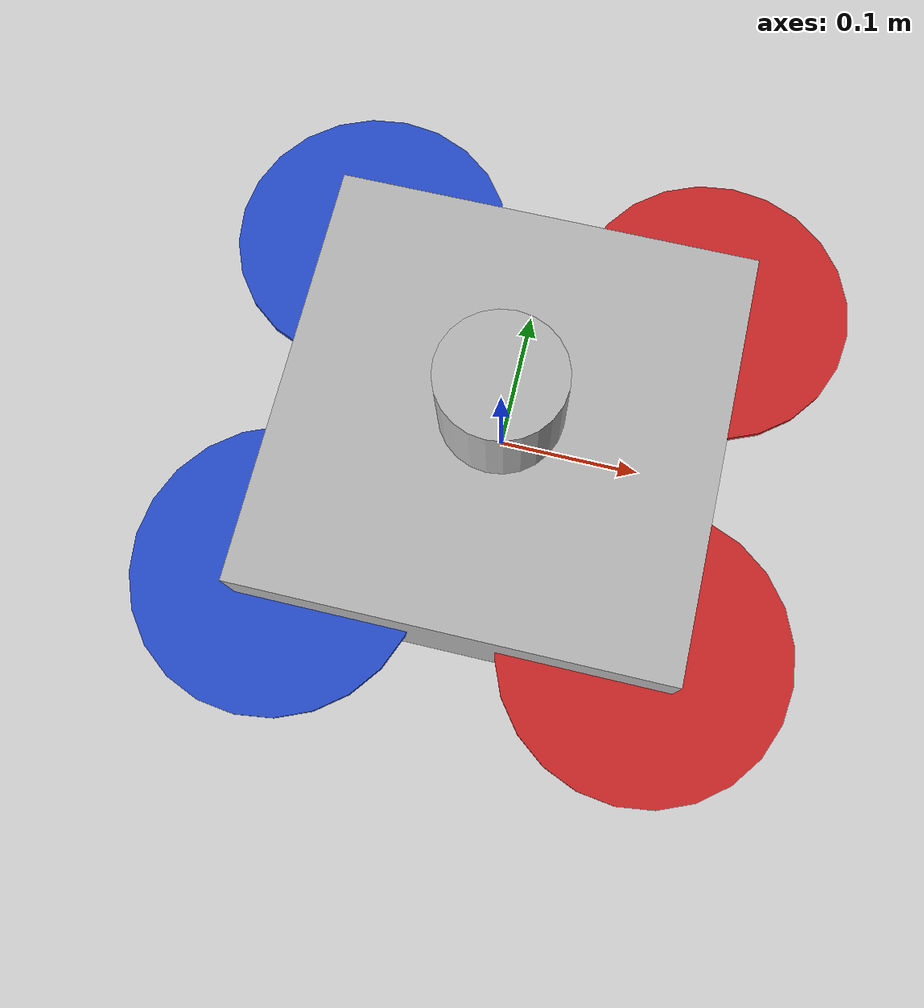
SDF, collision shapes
<?xml version="1.0"?>

<sdf version='1.7'>
  <model name='ardrone'>
  <static>false</static>

    <link name='ardrone/base_link'>
      <pose>0 0 0 0 0 0</pose>
      <inertial>
        <pose>0 0 0 0 0 0</pose>
        <mass>1.5</mass>
        <inertia>
          <ixx>0.0347563</ixx>
          <ixy>0</ixy>
          <ixz>0</ixz>
          <iyy>0.0458929</iyy>
          <iyz>0</iyz>
          <izz>0.0977</izz>
        </inertia>
      </inertial>
      <collision name='base_link_inertia_collision'>
        <pose>0 0 0.014 0 0 0</pose>
        <geometry>
            <box>
              <size>0.3 0.3 0.11</size>
            </box>
        </geometry>
      </collision>
      <visual name='base_link_inertia_visual'>
        <pose>0 0 0 0 0 0</pose>
        <geometry>
          <mesh>
            <scale>1 1 1</scale>
            <uri>model://ardrone/meshes/ardrone/quadrotor_4.dae</uri>
          </mesh>
        </geometry>
      </visual>
    </link>
    <link name='ardrone/imu_link'>
      <pose>0 0 0 0 0 0</pose>
    </link>
    <joint name='ardrone/imu_joint' type='revolute'>
      <child>ardrone/imu_link</child>
      <parent>ardrone/base_link</parent>
      <axis>
        <xyz>1 0 0</xyz>
        <limit>
          <lower>0</lower>
          <upper>0</upper>
          <effort>0</effort>
          <velocity>0</velocity>
        </limit>
        <dynamics>
          <spring_reference>0</spring_reference>
          <spring_stiffness>0</spring_stiffness>
        </dynamics>
        <use_parent_model_frame>1</use_parent_model_frame>
      </axis>
    </joint>
    <link name='ardrone/imugt_link'>
      <pose>0 0 0 0 0 0</pose>
      <inertial>
        <pose>0 0 0 0 0 0</pose>
        <mass>1e-05</mass>
        <inertia>
          <ixx>1e-05</ixx>
          <ixy>0</ixy>
          <ixz>0</ixz>
          <iyy>1e-05</iyy>
          <iyz>0</iyz>
          <izz>1e-05</izz>
        </inertia>
      </inertial>
    </link>
    <joint name='ardrone/imugt_joint' type='revolute'>
      <child>ardrone/imugt_link</child>
      <parent>ardrone/base_link</parent>
      <axis>
        <xyz>1 0 0</xyz>
        <limit>
          <lower>0</lower>
          <upper>0</upper>
          <effort>0</effort>
          <velocity>0</velocity>
        </limit>
        <dynamics>
          <spring_reference>0</spring_reference>
          <spring_stiffness>0</spring_stiffness>
        </dynamics>
        <use_parent_model_frame>1</use_parent_model_frame>
      </axis>
    </joint>
    <link name='ardrone/odometry_sensor1_link'>
      <pose>0 0 0 0 0 0</pose>
      <inertial>
        <pose>0 0 0 0 0 0</pose>
        <mass>1e-05</mass>
        <inertia>
          <ixx>1e-05</ixx>
          <ixy>0</ixy>
          <ixz>0</ixz>
          <iyy>1e-05</iyy>
          <iyz>0</iyz>
          <izz>1e-05</izz>
        </inertia>
      </inertial>
    </link>
    <joint name='ardrone/odometry_sensor1_joint' type='revolute'>
      <child>ardrone/odometry_sensor1_link</child>
      <parent>ardrone/base_link</parent>
      <axis>
        <xyz>1 0 0</xyz>
        <limit>
          <lower>0</lower>
          <upper>0</upper>
          <effort>0</effort>
          <velocity>0</velocity>
        </limit>
        <dynamics>
          <spring_reference>0</spring_reference>
          <spring_stiffness>0</spring_stiffness>
        </dynamics>
        <use_parent_model_frame>1</use_parent_model_frame>
      </axis>
    </joint>
    <link name='ardrone/odometry_sensorgt_link'>
      <pose>0 0 0 0 0 0</pose>
      <inertial>
        <pose>0 0 0 0 0 0</pose>
        <mass>1e-05</mass>
        <inertia>
          <ixx>1e-05</ixx>
          <ixy>0</ixy>
          <ixz>0</ixz>
          <iyy>1e-05</iyy>
          <iyz>0</iyz>
          <izz>1e-05</izz>
        </inertia>
      </inertial>
    </link>
    <joint name='ardrone/odometry_sensorgt_joint' type='revolute'>
      <child>ardrone/odometry_sensorgt_link</child>
      <parent>ardrone/base_link</parent>
      <axis>
        <xyz>1 0 0</xyz>
        <limit>
          <lower>0</lower>
          <upper>0</upper>
          <effort>0</effort>
          <velocity>0</velocity>
        </limit>
        <dynamics>
          <spring_reference>0</spring_reference>
          <spring_stiffness>0</spring_stiffness>
        </dynamics>
        <use_parent_model_frame>1</use_parent_model_frame>
      </axis>
    </joint>
    <link name='ardrone/rotor_0'>
      <pose>0.127279 -0.127279 0.023 0 0 0</pose>
      <inertial>
        <pose>0 0 0 0 0 0</pose>
        <mass>0.005</mass>
        <inertia>
          <ixx>9.75e-07</ixx>
          <ixy>0</ixy>
          <ixz>0</ixz>
          <iyy>4.17041e-05</iyy>
          <iyz>0</iyz>
          <izz>4.26041e-05</izz>
        </inertia>
      </inertial>
      <collision name='rotor_0_collision'>
        <pose>0 0 0 0 0 0</pose>
        <geometry>
          <cylinder>
            <length>0.005</length>
            <radius>0.1</radius>
          </cylinder>
        </geometry>
        <surface>
          <contact>
            <ode/>
          </contact>
          <friction>
            <ode/>
          </friction>
        </surface>
      </collision>
      <visual name='rotor_0_visual'>
        <pose>0 0 0 0 0 0</pose>
        <geometry>
          <mesh>
            <scale>0.1 0.1 0.1</scale>
            <uri>model://ardrone/meshes/ardrone/propeller_ccw.dae</uri>
          </mesh>
        </geometry>
        <material>
          <script>
            <name>Gazebo/Red</name>
            <uri>file://media/materials/scripts/gazebo.material</uri>
          </script>
        </material>
      </visual>
      <gravity>1</gravity>
      <velocity_decay/>
    </link>
    <joint name='ardrone/rotor_0_joint' type='revolute'>
      <child>ardrone/rotor_0</child>
      <parent>ardrone/base_link</parent>
      <axis>
        <xyz>0 0 1</xyz>
        <limit>
          <lower>-1e+16</lower>
          <upper>1e+16</upper>
        </limit>
        <dynamics>
          <spring_reference>0</spring_reference>
          <spring_stiffness>0</spring_stiffness>
        </dynamics>
        <use_parent_model_frame>1</use_parent_model_frame>
      </axis>
    </joint>
    <link name='ardrone/rotor_1'>
      <pose>-0.127279 0.127279 0.023 0 0 0</pose>
      <inertial>
        <pose>0 0 0 0 0 0</pose>
        <mass>0.005</mass>
        <inertia>
          <ixx>9.75e-07</ixx>
          <ixy>0</ixy>
          <ixz>0</ixz>
          <iyy>4.17041e-05</iyy>
          <iyz>0</iyz>
          <izz>4.26041e-05</izz>
        </inertia>
      </inertial>
      <collision name='rotor_1_collision'>
        <pose>0 0 0 0 0 0</pose>
        <geometry>
          <cylinder>
            <length>0.005</length>
            <radius>0.1</radius>
          </cylinder>
        </geometry>
        <surface>
          <contact>
            <ode/>
          </contact>
          <friction>
            <ode/>
          </friction>
        </surface>
      </collision>
      <visual name='rotor_1_visual'>
        <pose>0 0 0 0 0 0</pose>
        <geometry>
          <mesh>
            <scale>0.1 0.1 0.1</scale>
            <uri>model://ardrone/meshes/ardrone/propeller_ccw.dae</uri>
          </mesh>
        </geometry>
        <material>
          <script>
            <name>Gazebo/Blue</name>
            <uri>file://media/materials/scripts/gazebo.material</uri>
          </script>
        </material>
      </visual>
      <gravity>1</gravity>
      <velocity_decay/>
    </link>
    <joint name='ardrone/rotor_1_joint' type='revolute'>
      <child>ardrone/rotor_1</child>
      <parent>ardrone/base_link</parent>
      <axis>
        <xyz>0 0 1</xyz>
        <limit>
          <lower>-1e+16</lower>
          <upper>1e+16</upper>
        </limit>
        <dynamics>
          <spring_reference>0</spring_reference>
          <spring_stiffness>0</spring_stiffness>
        </dynamics>
        <use_parent_model_frame>1</use_parent_model_frame>
      </axis>
    </joint>
    <link name='ardrone/rotor_2'>
      <pose>0.127279 0.127279 0.023 0 0 0</pose>
      <inertial>
        <pose>0 0 0 0 0 0</pose>
        <mass>0.005</mass>
        <inertia>
          <ixx>9.75e-07</ixx>
          <ixy>0</ixy>
          <ixz>0</ixz>
          <iyy>4.17041e-05</iyy>
          <iyz>0</iyz>
          <izz>4.26041e-05</izz>
        </inertia>
      </inertial>
      <collision name='rotor_2_collision'>
        <pose>0 0 0 0 0 0</pose>
        <geometry>
          <cylinder>
            <length>0.005</length>
            <radius>0.1</radius>
          </cylinder>
        </geometry>
        <surface>
          <contact>
            <ode/>
          </contact>
          <friction>
            <ode/>
          </friction>
        </surface>
      </collision>
      <visual name='rotor_2_visual'>
        <pose>0 0 0 0 0 0</pose>
        <geometry>
          <mesh>
            <scale>0.1 0.1 0.1</scale>
            <uri>model://ardrone/meshes/ardrone/propeller_cw.dae</uri>
          </mesh>
        </geometry>
        <material>
          <script>
            <name>Gazebo/Red</name>
            <uri>file://media/materials/scripts/gazebo.material</uri>
          </script>
        </material>
      </visual>
      <gravity>1</gravity>
      <velocity_decay/>
    </link>
    <joint name='ardrone/rotor_2_joint' type='revolute'>
      <child>ardrone/rotor_2</child>
      <parent>ardrone/base_link</parent>
      <axis>
        <xyz>0 0 1</xyz>
        <limit>
          <lower>-1e+16</lower>
          <upper>1e+16</upper>
        </limit>
        <dynamics>
          <spring_reference>0</spring_reference>
          <spring_stiffness>0</spring_stiffness>
        </dynamics>
        <use_parent_model_frame>1</use_parent_model_frame>
      </axis>
    </joint>
    <link name='ardrone/rotor_3'>
      <pose>-0.127279 -0.127279 0.023 0 0 0</pose>
      <inertial>
        <pose>0 0 0 0 0 0</pose>
        <mass>0.005</mass>
        <inertia>
          <ixx>9.75e-07</ixx>
          <ixy>0</ixy>
          <ixz>0</ixz>
          <iyy>4.17041e-05</iyy>
          <iyz>0</iyz>
          <izz>4.26041e-05</izz>
        </inertia>
      </inertial>
      <collision name='rotor_3_collision'>
        <pose>0 0 0 0 0 0</pose>
        <geometry>
          <cylinder>
            <length>0.005</length>
            <radius>0.1</radius>
          </cylinder>
        </geometry>
        <surface>
          <contact>
            <ode/>
          </contact>
          <friction>
            <ode/>
          </friction>
        </surface>
      </collision>
      <visual name='rotor_3_visual'>
        <pose>0 0 0 0 0 0</pose>
        <geometry>
          <mesh>
            <scale>0.1 0.1 0.1</scale>
            <uri>model://ardrone/meshes/ardrone/propeller_cw.dae</uri>
          </mesh>
        </geometry>
        <material>
          <script>
            <name>Gazebo/Blue</name>
            <uri>file://media/materials/scripts/gazebo.material</uri>
          </script>
        </material>
      </visual>
      <gravity>1</gravity>
      <velocity_decay/>
    </link>
    <joint name='ardrone/rotor_3_joint' type='revolute'>
      <child>ardrone/rotor_3</child>
      <parent>ardrone/base_link</parent>
      <axis>
        <xyz>0 0 1</xyz>
        <limit>
          <lower>-1e+16</lower>
          <upper>1e+16</upper>
        </limit>
        <dynamics>
          <spring_reference>0</spring_reference>
          <spring_stiffness>0</spring_stiffness>
        </dynamics>
        <use_parent_model_frame>1</use_parent_model_frame>
      </axis>
    </joint>

    <!-- Ouster Configuration-->

    <link name="ardrone/os1_sensor_link">
      <pose>0 0 0.108 0 0 0</pose>
      <inertial>
        <mass>0.1</mass>
        <inertia>
          <ixx>0.000090623</ixx>
          <iyy>0.000090623</iyy>
          <izz>0.000091036</izz>
          <ixy>0</ixy>
          <ixz>0</ixz>
          <iyz>0</iyz>
        </inertia>
      </inertial>
      <collision name="top_collision">
        <geometry>
          <cylinder>
            <radius>0.04267</radius>
            <length>0.07357</length>
          </cylinder>
        </geometry>
      </collision>
      <visual name="top_visual">
        <pose>0 0 -0.0376785 0 0 1.5707</pose>
        <geometry>
          <mesh>
            <uri>model://sensors/velodyne_hdl32/meshes/velodyne_top.dae</uri>
          </mesh>
        </geometry>
      </visual>
      <sensor type="ray" name="lase_scan">
        <pose>0 0 -0.004645 0 0 0</pose>
        <visualize>false</visualize>
        <update_rate>10</update_rate>
        <ray>
          <scan>
            <horizontal>
              <samples>512</samples>
              <resolution>1</resolution>
              <min_angle>-3.14159</min_angle>
              <max_angle>3.14159</max_angle>
            </horizontal>
            <vertical>
              <samples>16</samples>
              <resolution>1</resolution>
              <min_angle>-0.2897247</min_angle>
              <max_angle>0.2897247</max_angle>
            </vertical>
          </scan>
          <range>
            <min>0.8</min>
            <max>120</max>
            <resolution>0.012</resolution>
          </range>
          <noise>
            <type>gaussian</type>
            <mean>0.0</mean>
            <stddev>0.0</stddev>
          </noise>
        </ray>
        <plugin name="gazebo_ros_laser_controller" filename="libgazebo_ros_velodyne_laser.so">
          <robotNamespace>ardrone</robotNamespace>
          <topicName>os1_cloud_node/points</topicName>
          <frameName>os1_sensor</frameName>
          <min_range>0.8</min_range>
          <max_range>120.0</max_range>
          <gaussianNoise>0.008</gaussianNoise>
        </plugin>
      </sensor>
    </link>
    <joint name='fixed_velodyne' type='fixed'>
      <child>ardrone/os1_sensor_link</child>
      <parent>ardrone/base_link</parent>
      <pose> 0 0 0 0 0 0</pose>
    </joint>

    <!-- Plugin to control differential locomotion-->

    <plugin name='multirotor_base_plugin' filename='librotors_gazebo_multirotor_base_plugin.so'>
      <robotNamespace>ardrone</robotNamespace>
      <linkName>ardrone/base_link</linkName>
      <rotorVelocitySlowdownSim>10</rotorVelocitySlowdownSim>
    </plugin>
    <plugin name='ardrone_front_right_motor_model' filename='librotors_gazebo_motor_model.so'>
      <robotNamespace>ardrone</robotNamespace>
      <jointName>ardrone/rotor_0_joint</jointName>
      <linkName>ardrone/rotor_0</linkName>
      <turningDirection>ccw</turningDirection>
      <timeConstantUp>0.0125</timeConstantUp>
      <timeConstantDown>0.025</timeConstantDown>
      <maxRotVelocity>838</maxRotVelocity>
      <motorConstant>8.54858e-05</motorConstant>
      <momentConstant>0.016</momentConstant>
      <commandSubTopic>gazebo/command/motor_speed</commandSubTopic>
      <motorNumber>0</motorNumber>
      <rotorDragCoefficient>8.06428e-05</rotorDragCoefficient>
      <rollingMomentCoefficient>1e-06</rollingMomentCoefficient>
      <motorSpeedPubTopic>motor_speed/0</motorSpeedPubTopic>
      <rotorVelocitySlowdownSim>10</rotorVelocitySlowdownSim>
    </plugin>
    <plugin name='ardrone_back_left_motor_model' filename='librotors_gazebo_motor_model.so'>
      <robotNamespace>ardrone</robotNamespace>
      <jointName>ardrone/rotor_1_joint</jointName>
      <linkName>ardrone/rotor_1</linkName>
      <turningDirection>ccw</turningDirection>
      <timeConstantUp>0.0125</timeConstantUp>
      <timeConstantDown>0.025</timeConstantDown>
      <maxRotVelocity>838</maxRotVelocity>
      <motorConstant>8.54858e-05</motorConstant>
      <momentConstant>0.016</momentConstant>
      <commandSubTopic>gazebo/command/motor_speed</commandSubTopic>
      <motorNumber>1</motorNumber>
      <rotorDragCoefficient>8.06428e-05</rotorDragCoefficient>
      <rollingMomentCoefficient>1e-06</rollingMomentCoefficient>
      <motorSpeedPubTopic>motor_speed/1</motorSpeedPubTopic>
      <rotorVelocitySlowdownSim>10</rotorVelocitySlowdownSim>
    </plugin>
    <plugin name='ardrone_front_left_motor_model' filename='librotors_gazebo_motor_model.so'>
      <robotNamespace>ardrone</robotNamespace>
      <jointName>ardrone/rotor_2_joint</jointName>
      <linkName>ardrone/rotor_2</linkName>
      <turningDirection>cw</turningDirection>
      <timeConstantUp>0.0125</timeConstantUp>
      <timeConstantDown>0.025</timeConstantDown>
      <maxRotVelocity>838</maxRotVelocity>
      <motorConstant>8.54858e-05</motorConstant>
      <momentConstant>0.016</momentConstant>
      <commandSubTopic>gazebo/command/motor_speed</commandSubTopic>
      <motorNumber>2</motorNumber>
      <rotorDragCoefficient>8.06428e-05</rotorDragCoefficient>
      <rollingMomentCoefficient>1e-06</rollingMomentCoefficient>
      <motorSpeedPubTopic>motor_speed/2</motorSpeedPubTopic>
      <rotorVelocitySlowdownSim>10</rotorVelocitySlowdownSim>
    </plugin>

    <plugin name='ardrone_back_right_motor_model' filename='librotors_gazebo_motor_model.so'>
      <robotNamespace>ardrone</robotNamespace>
      <jointName>ardrone/rotor_3_joint</jointName>
      <linkName>ardrone/rotor_3</linkName>
      <turningDirection>cw</turningDirection>
      <timeConstantUp>0.0125</timeConstantUp>
      <timeConstantDown>0.025</timeConstantDown>
      <maxRotVelocity>838</maxRotVelocity>
      <motorConstant>8.54858e-05</motorConstant>
      <momentConstant>0.016</momentConstant>
      <commandSubTopic>gazebo/command/motor_speed</commandSubTopic>
      <motorNumber>3</motorNumber>
      <rotorDragCoefficient>8.06428e-05</rotorDragCoefficient>
      <rollingMomentCoefficient>1e-06</rollingMomentCoefficient>
      <motorSpeedPubTopic>motor_speed/3</motorSpeedPubTopic>
      <rotorVelocitySlowdownSim>10</rotorVelocitySlowdownSim>
    </plugin>

    <plugin name='controller_interface' filename='librotors_gazebo_controller_interface.so'>
      <robotNamespace>ardrone</robotNamespace>
      <commandAttitudeThrustSubTopic>command/attitude</commandAttitudeThrustSubTopic>
      <commandRateThrustSubTopic>command/rate</commandRateThrustSubTopic>
      <commandMotorSpeedSubTopic>command/motor_speed</commandMotorSpeedSubTopic>
      <imuSubTopic>imu</imuSubTopic>
      <motorSpeedCommandPubTopic>gazebo/command/motor_speed</motorSpeedCommandPubTopic>
    </plugin>

    <plugin name='rotors_gazebo_imu_plugin' filename='librotors_gazebo_imu_plugin.so'>
      <robotNamespace>ardrone</robotNamespace>
      <linkName>ardrone/imu_link</linkName>
      <imuTopic>imu</imuTopic>
      <gyroscopeNoiseDensity>0.0003394</gyroscopeNoiseDensity>
      <gyroscopeRandomWalk>3.8785e-05</gyroscopeRandomWalk>
      <gyroscopeBiasCorrelationTime>1000.0</gyroscopeBiasCorrelationTime>
      <gyroscopeTurnOnBiasSigma>0.0087</gyroscopeTurnOnBiasSigma>
      <accelerometerNoiseDensity>0.004</accelerometerNoiseDensity>
      <accelerometerRandomWalk>0.006</accelerometerRandomWalk>
      <accelerometerBiasCorrelationTime>300.0</accelerometerBiasCorrelationTime>
      <accelerometerTurnOnBiasSigma>0.196</accelerometerTurnOnBiasSigma>
    </plugin>

    <plugin name="odometry_sensor" filename="librotors_gazebo_odometry_plugin.so">
      <linkName>ardrone/odometry_sensorgt_link</linkName>
      <robotNamespace>ardrone</robotNamespace>
      <poseTopic>ground_truth/pose</poseTopic>
      <poseWithCovarianceTopic>ground_truth/pose_with_covariance</poseWithCovarianceTopic>
      <positionTopic>ground_truth/position</positionTopic>
      <transformTopic>ground_truth/transform</transformTopic>
      <odometryTopic>ground_truth/odometry</odometryTopic>
      <parentFrameId>world</parentFrameId>
      <childFrameId>ardrone/odometry_sensor</childFrameId>
      <measurementDivisor>1</measurementDivisor>
      <measurementDelay>0</measurementDelay>
      <unknownDelay>0.0</unknownDelay>
      <noiseNormalPosition>0 0 0</noiseNormalPosition>
      <noiseNormalQuaternion>0 0 0</noiseNormalQuaternion>
      <noiseNormalLinearVelocity>0 0 0</noiseNormalLinearVelocity>
      <noiseNormalAngularVelocity>0 0 0</noiseNormalAngularVelocity>
      <noiseUniformPosition>0 0 0</noiseUniformPosition>
      <noiseUniformQuaternion>0 0 0</noiseUniformQuaternion>
      <noiseUniformLinearVelocity>0 0 0</noiseUniformLinearVelocity>
      <noiseUniformAngularVelocity>0 0 0</noiseUniformAngularVelocity>
    </plugin>

  </model>
</sdf>
